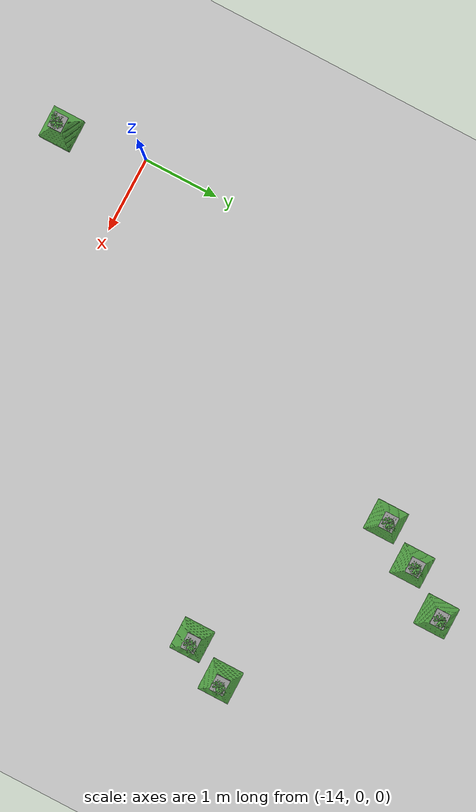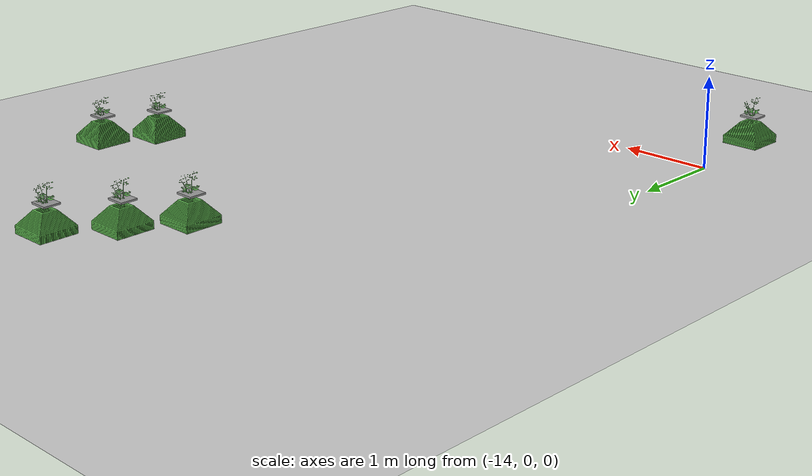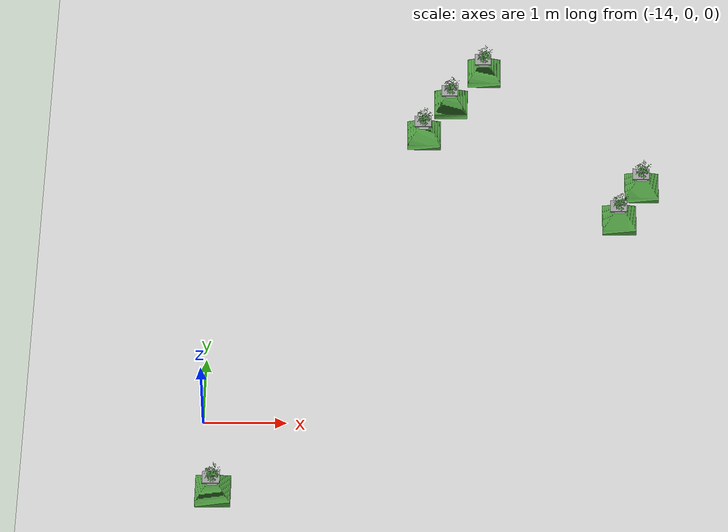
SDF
<sdf version="1.6">
 <world name="default">
  <model name="ground_plane">
   <static>1</static>
   <link name="link">
    <collision name="collision">
     <geometry><plane><normal>0 0 1</normal><size>100 100</size></plane></geometry>
     <surface><friction><ode><mu>100</mu><mu2>50</mu2></ode></friction></surface>
    </collision>
    <visual name="visual">
     <cast_shadows>0</cast_shadows>
     <geometry><plane><normal>0 0 1</normal><size>100 100</size></plane></geometry>
     <material>
      <script><uri>file://media/materials/scripts/gazebo.material</uri><name>Gazebo/Grey</name></script>
     </material>
    </visual>
   </link>
  </model>
  <model name="plant_7">
   <link name="link_0">
    <inertial>
     <mass>1</mass>
     <inertia>
      <ixx>0.0134051</ixx>
      <ixy>0</ixy>
      <ixz>0</ixz>
      <iyy>0.0134051</iyy>
      <iyz>0</iyz>
      <izz>0.0254102</izz>
     </inertia>
    </inertial>
    <gravity>0</gravity>
    <visual name="visual">
     <geometry><mesh><uri>model://square_pot/pot.stl</uri><scale>0.033 0.033 0.02</scale></mesh></geometry>
     <material>
      <lighting>1</lighting>
      <script><uri>file://media/materials/scripts/gazebo.material</uri><name>Gazebo/Grass</name></script>
      <ambient>0.3 0.3 0.3 1</ambient>
      <diffuse>0.7 0.7 0.7 1</diffuse>
      <specular>0.01 0.01 0.01 1</specular>
      <emissive>0 0 0 1</emissive>
      <shader type="vertex"><normal_map>__default__</normal_map></shader>
     </material>
    </visual>
    <collision name="collision">
     <pose>0 0 0.25 0 -0 0</pose>
     <geometry><box><size>0.4 0.4 0.4</size></box></geometry>
     <surface>
      <friction>
       <ode><mu>1</mu><mu2>1</mu2><fdir1>0 0 0</fdir1><slip1>0</slip1><slip2>0</slip2></ode>
       <torsional>
        <coefficient>1</coefficient>
        <patch_radius>0</patch_radius>
        <surface_radius>0</surface_radius>
        <use_patch_radius>1</use_patch_radius>
        <ode><slip>0</slip></ode>
       </torsional>
      </friction>
      <bounce><restitution_coefficient>0</restitution_coefficient><threshold>1e+06</threshold></bounce>
      <contact>
       <collide_without_contact>1</collide_without_contact>
       <collide_without_contact_bitmask>1</collide_without_contact_bitmask>
       <collide_bitmask>1</collide_bitmask>
       <ode>
        <soft_cfm>0</soft_cfm>
        <soft_erp>0.2</soft_erp>
        <kp>1e+13</kp>
        <kd>1</kd>
        <max_vel>0.01</max_vel>
        <min_depth>0</min_depth>
       </ode>
       <bullet>
        <split_impulse>1</split_impulse>
        <split_impulse_penetration_threshold>-0.01</split_impulse_penetration_threshold>
        <soft_cfm>0</soft_cfm>
        <soft_erp>0.2</soft_erp>
        <kp>1e+13</kp>
        <kd>1</kd>
       </bullet>
      </contact>
     </surface>
    </collision>
   </link>
   <link name="link_0_0">
    <pose>-0.011441 -0.008338 0.308474 0 -0 0</pose>
    <inertial>
     <mass>0.000736153</mass>
     <inertia>
      <ixx>2.11165e-06</ixx>
      <ixy>0</ixy>
      <ixz>0</ixz>
      <iyy>2.64382e-06</iyy>
      <iyz>0</iyz>
      <izz>4.70976e-06</izz>
     </inertia>
    </inertial>
    <visual name="visual">
     <geometry><box><size>0.206678 0.18452 0.019291</size></box></geometry>
     <material>
      <lighting>1</lighting>
      <script><uri>file://media/materials/scripts/gazebo.material</uri><name>Gazebo/Grey</name></script>
      <ambient>0.3 0.3 0.3 1</ambient>
      <diffuse>0.7 0.7 0.7 1</diffuse>
      <specular>0.01 0.01 0.01 1</specular>
      <emissive>0 0 0 1</emissive>
     </material>
    </visual>
    <collision name="collision">
     <geometry><box><size>0.206678 0.18452 0.019291</size></box></geometry>
     <surface>
      <friction>
       <ode><mu>1</mu><mu2>1</mu2><fdir1>0 0 0</fdir1><slip1>0</slip1><slip2>0</slip2></ode>
       <torsional>
        <coefficient>1</coefficient>
        <patch_radius>0</patch_radius>
        <surface_radius>0</surface_radius>
        <use_patch_radius>1</use_patch_radius>
        <ode><slip>0</slip></ode>
       </torsional>
      </friction>
      <bounce><restitution_coefficient>0</restitution_coefficient><threshold>1e+06</threshold></bounce>
      <contact>
       <collide_without_contact>0</collide_without_contact>
       <collide_without_contact_bitmask>1</collide_without_contact_bitmask>
       <collide_bitmask>1</collide_bitmask>
       <ode>
        <soft_cfm>0</soft_cfm>
        <soft_erp>0.2</soft_erp>
        <kp>1e+13</kp>
        <kd>1</kd>
        <max_vel>0.01</max_vel>
        <min_depth>0</min_depth>
       </ode>
       <bullet>
        <split_impulse>1</split_impulse>
        <split_impulse_penetration_threshold>-0.01</split_impulse_penetration_threshold>
        <soft_cfm>0</soft_cfm>
        <soft_erp>0.2</soft_erp>
        <kp>1e+13</kp>
        <kd>1</kd>
       </bullet>
      </contact>
     </surface>
    </collision>
   </link>
   <static>1</static>
   <pose>-8.67163 3.86879 0 0 -0 0</pose>
  </model>
  <model name="plant_8">
   <link name="link_0">
    <inertial>
     <mass>1</mass>
     <inertia>
      <ixx>0.0134051</ixx>
      <ixy>0</ixy>
      <ixz>0</ixz>
      <iyy>0.0134051</iyy>
      <iyz>0</iyz>
      <izz>0.0254102</izz>
     </inertia>
    </inertial>
    <gravity>0</gravity>
    <visual name="visual">
     <geometry><mesh><uri>model://square_pot/pot.stl</uri><scale>0.033 0.033 0.02</scale></mesh></geometry>
     <material>
      <lighting>1</lighting>
      <script><uri>file://media/materials/scripts/gazebo.material</uri><name>Gazebo/Grass</name></script>
      <ambient>0.3 0.3 0.3 1</ambient>
      <diffuse>0.7 0.7 0.7 1</diffuse>
      <specular>0.01 0.01 0.01 1</specular>
      <emissive>0 0 0 1</emissive>
      <shader type="vertex"><normal_map>__default__</normal_map></shader>
     </material>
    </visual>
    <collision name="collision">
     <pose>0 0 0.25 0 -0 0</pose>
     <geometry><box><size>0.4 0.4 0.4</size></box></geometry>
     <surface>
      <friction>
       <ode><mu>1</mu><mu2>1</mu2><fdir1>0 0 0</fdir1><slip1>0</slip1><slip2>0</slip2></ode>
       <torsional>
        <coefficient>1</coefficient>
        <patch_radius>0</patch_radius>
        <surface_radius>0</surface_radius>
        <use_patch_radius>1</use_patch_radius>
        <ode><slip>0</slip></ode>
       </torsional>
      </friction>
      <bounce><restitution_coefficient>0</restitution_coefficient><threshold>1e+06</threshold></bounce>
      <contact>
       <collide_without_contact>1</collide_without_contact>
       <collide_without_contact_bitmask>1</collide_without_contact_bitmask>
       <collide_bitmask>1</collide_bitmask>
       <ode>
        <soft_cfm>0</soft_cfm>
        <soft_erp>0.2</soft_erp>
        <kp>1e+13</kp>
        <kd>1</kd>
        <max_vel>0.01</max_vel>
        <min_depth>0</min_depth>
       </ode>
       <bullet>
        <split_impulse>1</split_impulse>
        <split_impulse_penetration_threshold>-0.01</split_impulse_penetration_threshold>
        <soft_cfm>0</soft_cfm>
        <soft_erp>0.2</soft_erp>
        <kp>1e+13</kp>
        <kd>1</kd>
       </bullet>
      </contact>
     </surface>
    </collision>
   </link>
   <link name="link_0_0">
    <pose>-0.011441 -0.008338 0.308474 0 -0 0</pose>
    <inertial>
     <mass>0.000736153</mass>
     <inertia>
      <ixx>2.11165e-06</ixx>
      <ixy>0</ixy>
      <ixz>0</ixz>
      <iyy>2.64382e-06</iyy>
      <iyz>0</iyz>
      <izz>4.70976e-06</izz>
     </inertia>
    </inertial>
    <visual name="visual">
     <geometry><box><size>0.206678 0.18452 0.019291</size></box></geometry>
     <material>
      <lighting>1</lighting>
      <script><uri>file://media/materials/scripts/gazebo.material</uri><name>Gazebo/Grey</name></script>
      <ambient>0.3 0.3 0.3 1</ambient>
      <diffuse>0.7 0.7 0.7 1</diffuse>
      <specular>0.01 0.01 0.01 1</specular>
      <emissive>0 0 0 1</emissive>
     </material>
    </visual>
    <collision name="collision">
     <geometry><box><size>0.206678 0.18452 0.019291</size></box></geometry>
     <surface>
      <friction>
       <ode><mu>1</mu><mu2>1</mu2><fdir1>0 0 0</fdir1><slip1>0</slip1><slip2>0</slip2></ode>
       <torsional>
        <coefficient>1</coefficient>
        <patch_radius>0</patch_radius>
        <surface_radius>0</surface_radius>
        <use_patch_radius>1</use_patch_radius>
        <ode><slip>0</slip></ode>
       </torsional>
      </friction>
      <bounce><restitution_coefficient>0</restitution_coefficient><threshold>1e+06</threshold></bounce>
      <contact>
       <collide_without_contact>0</collide_without_contact>
       <collide_without_contact_bitmask>1</collide_without_contact_bitmask>
       <collide_bitmask>1</collide_bitmask>
       <ode>
        <soft_cfm>0</soft_cfm>
        <soft_erp>0.2</soft_erp>
        <kp>1e+13</kp>
        <kd>1</kd>
        <max_vel>0.01</max_vel>
        <min_depth>0</min_depth>
       </ode>
       <bullet>
        <split_impulse>1</split_impulse>
        <split_impulse_penetration_threshold>-0.01</split_impulse_penetration_threshold>
        <soft_cfm>0</soft_cfm>
        <soft_erp>0.2</soft_erp>
        <kp>1e+13</kp>
        <kd>1</kd>
       </bullet>
      </contact>
     </surface>
    </collision>
   </link>
   <static>1</static>
   <pose>-8.96042 3.31665 0 0 -0 0</pose>
  </model>
  <model name="plant_9">
   <link name="link_0">
    <inertial>
     <mass>1</mass>
     <inertia>
      <ixx>0.0134051</ixx>
      <ixy>0</ixy>
      <ixz>0</ixz>
      <iyy>0.0134051</iyy>
      <iyz>0</iyz>
      <izz>0.0254102</izz>
     </inertia>
    </inertial>
    <gravity>0</gravity>
    <visual name="visual">
     <geometry><mesh><uri>model://square_pot/pot.stl</uri><scale>0.033 0.033 0.02</scale></mesh></geometry>
     <material>
      <lighting>1</lighting>
      <script><uri>file://media/materials/scripts/gazebo.material</uri><name>Gazebo/Grass</name></script>
      <ambient>0.3 0.3 0.3 1</ambient>
      <diffuse>0.7 0.7 0.7 1</diffuse>
      <specular>0.01 0.01 0.01 1</specular>
      <emissive>0 0 0 1</emissive>
      <shader type="vertex"><normal_map>__default__</normal_map></shader>
     </material>
    </visual>
    <collision name="collision">
     <pose>0 0 0.25 0 -0 0</pose>
     <geometry><box><size>0.4 0.4 0.4</size></box></geometry>
     <surface>
      <friction>
       <ode><mu>1</mu><mu2>1</mu2><fdir1>0 0 0</fdir1><slip1>0</slip1><slip2>0</slip2></ode>
       <torsional>
        <coefficient>1</coefficient>
        <patch_radius>0</patch_radius>
        <surface_radius>0</surface_radius>
        <use_patch_radius>1</use_patch_radius>
        <ode><slip>0</slip></ode>
       </torsional>
      </friction>
      <bounce><restitution_coefficient>0</restitution_coefficient><threshold>1e+06</threshold></bounce>
      <contact>
       <collide_without_contact>1</collide_without_contact>
       <collide_without_contact_bitmask>1</collide_without_contact_bitmask>
       <collide_bitmask>1</collide_bitmask>
       <ode>
        <soft_cfm>0</soft_cfm>
        <soft_erp>0.2</soft_erp>
        <kp>1e+13</kp>
        <kd>1</kd>
        <max_vel>0.01</max_vel>
        <min_depth>0</min_depth>
       </ode>
       <bullet>
        <split_impulse>1</split_impulse>
        <split_impulse_penetration_threshold>-0.01</split_impulse_penetration_threshold>
        <soft_cfm>0</soft_cfm>
        <soft_erp>0.2</soft_erp>
        <kp>1e+13</kp>
        <kd>1</kd>
       </bullet>
      </contact>
     </surface>
    </collision>
   </link>
   <link name="link_0_0">
    <pose>-0.011441 -0.008338 0.308474 0 -0 0</pose>
    <inertial>
     <mass>0.000736153</mass>
     <inertia>
      <ixx>2.11165e-06</ixx>
      <ixy>0</ixy>
      <ixz>0</ixz>
      <iyy>2.64382e-06</iyy>
      <iyz>0</iyz>
      <izz>4.70976e-06</izz>
     </inertia>
    </inertial>
    <visual name="visual">
     <geometry><box><size>0.206678 0.18452 0.019291</size></box></geometry>
     <material>
      <lighting>1</lighting>
      <script><uri>file://media/materials/scripts/gazebo.material</uri><name>Gazebo/Grey</name></script>
      <ambient>0.3 0.3 0.3 1</ambient>
      <diffuse>0.7 0.7 0.7 1</diffuse>
      <specular>0.01 0.01 0.01 1</specular>
      <emissive>0 0 0 1</emissive>
     </material>
    </visual>
    <collision name="collision">
     <geometry><box><size>0.206678 0.18452 0.019291</size></box></geometry>
     <surface>
      <friction>
       <ode><mu>1</mu><mu2>1</mu2><fdir1>0 0 0</fdir1><slip1>0</slip1><slip2>0</slip2></ode>
       <torsional>
        <coefficient>1</coefficient>
        <patch_radius>0</patch_radius>
        <surface_radius>0</surface_radius>
        <use_patch_radius>1</use_patch_radius>
        <ode><slip>0</slip></ode>
       </torsional>
      </friction>
      <bounce><restitution_coefficient>0</restitution_coefficient><threshold>1e+06</threshold></bounce>
      <contact>
       <collide_without_contact>0</collide_without_contact>
       <collide_without_contact_bitmask>1</collide_without_contact_bitmask>
       <collide_bitmask>1</collide_bitmask>
       <ode>
        <soft_cfm>0</soft_cfm>
        <soft_erp>0.2</soft_erp>
        <kp>1e+13</kp>
        <kd>1</kd>
        <max_vel>0.01</max_vel>
        <min_depth>0</min_depth>
       </ode>
       <bullet>
        <split_impulse>1</split_impulse>
        <split_impulse_penetration_threshold>-0.01</split_impulse_penetration_threshold>
        <soft_cfm>0</soft_cfm>
        <soft_erp>0.2</soft_erp>
        <kp>1e+13</kp>
        <kd>1</kd>
       </bullet>
      </contact>
     </surface>
    </collision>
   </link>
   <static>1</static>
   <pose>-11.3989 4.76744 0 0 -0 0</pose>
  </model>
  <model name="plant_16">
   <link name="link_0">
    <inertial>
     <mass>1</mass>
     <inertia>
      <ixx>0.0134051</ixx>
      <ixy>0</ixy>
      <ixz>0</ixz>
      <iyy>0.0134051</iyy>
      <iyz>0</iyz>
      <izz>0.0254102</izz>
     </inertia>
    </inertial>
    <gravity>0</gravity>
    <visual name="visual">
     <geometry><mesh><uri>model://square_pot/pot.stl</uri><scale>0.033 0.033 0.02</scale></mesh></geometry>
     <material>
      <lighting>1</lighting>
      <script><uri>file://media/materials/scripts/gazebo.material</uri><name>Gazebo/Grass</name></script>
      <ambient>0.3 0.3 0.3 1</ambient>
      <diffuse>0.7 0.7 0.7 1</diffuse>
      <specular>0.01 0.01 0.01 1</specular>
      <emissive>0 0 0 1</emissive>
      <shader type="vertex"><normal_map>__default__</normal_map></shader>
     </material>
    </visual>
    <collision name="collision">
     <pose>0 0 0.25 0 -0 0</pose>
     <geometry><box><size>0.4 0.4 0.4</size></box></geometry>
     <surface>
      <friction>
       <ode><mu>1</mu><mu2>1</mu2><fdir1>0 0 0</fdir1><slip1>0</slip1><slip2>0</slip2></ode>
       <torsional>
        <coefficient>1</coefficient>
        <patch_radius>0</patch_radius>
        <surface_radius>0</surface_radius>
        <use_patch_radius>1</use_patch_radius>
        <ode><slip>0</slip></ode>
       </torsional>
      </friction>
      <bounce><restitution_coefficient>0</restitution_coefficient><threshold>1e+06</threshold></bounce>
      <contact>
       <collide_without_contact>1</collide_without_contact>
       <collide_without_contact_bitmask>1</collide_without_contact_bitmask>
       <collide_bitmask>1</collide_bitmask>
       <ode>
        <soft_cfm>0</soft_cfm>
        <soft_erp>0.2</soft_erp>
        <kp>1e+13</kp>
        <kd>1</kd>
        <max_vel>0.01</max_vel>
        <min_depth>0</min_depth>
       </ode>
       <bullet>
        <split_impulse>1</split_impulse>
        <split_impulse_penetration_threshold>-0.01</split_impulse_penetration_threshold>
        <soft_cfm>0</soft_cfm>
        <soft_erp>0.2</soft_erp>
        <kp>1e+13</kp>
        <kd>1</kd>
       </bullet>
      </contact>
     </surface>
    </collision>
   </link>
   <link name="link_0_0">
    <pose>-0.011441 -0.008338 0.308474 0 -0 0</pose>
    <inertial>
     <mass>0.000736153</mass>
     <inertia>
      <ixx>2.11165e-06</ixx>
      <ixy>0</ixy>
      <ixz>0</ixz>
      <iyy>2.64382e-06</iyy>
      <iyz>0</iyz>
      <izz>4.70976e-06</izz>
     </inertia>
    </inertial>
    <visual name="visual">
     <geometry><box><size>0.206678 0.18452 0.019291</size></box></geometry>
     <material>
      <lighting>1</lighting>
      <script><uri>file://media/materials/scripts/gazebo.material</uri><name>Gazebo/Grey</name></script>
      <ambient>0.3 0.3 0.3 1</ambient>
      <diffuse>0.7 0.7 0.7 1</diffuse>
      <specular>0.01 0.01 0.01 1</specular>
      <emissive>0 0 0 1</emissive>
     </material>
    </visual>
    <collision name="collision">
     <geometry><box><size>0.206678 0.18452 0.019291</size></box></geometry>
     <surface>
      <friction>
       <ode><mu>1</mu><mu2>1</mu2><fdir1>0 0 0</fdir1><slip1>0</slip1><slip2>0</slip2></ode>
       <torsional>
        <coefficient>1</coefficient>
        <patch_radius>0</patch_radius>
        <surface_radius>0</surface_radius>
        <use_patch_radius>1</use_patch_radius>
        <ode><slip>0</slip></ode>
       </torsional>
      </friction>
      <bounce><restitution_coefficient>0</restitution_coefficient><threshold>1e+06</threshold></bounce>
      <contact>
       <collide_without_contact>0</collide_without_contact>
       <collide_without_contact_bitmask>1</collide_without_contact_bitmask>
       <collide_bitmask>1</collide_bitmask>
       <ode>
        <soft_cfm>0</soft_cfm>
        <soft_erp>0.2</soft_erp>
        <kp>1e+13</kp>
        <kd>1</kd>
        <max_vel>0.01</max_vel>
        <min_depth>0</min_depth>
       </ode>
       <bullet>
        <split_impulse>1</split_impulse>
        <split_impulse_penetration_threshold>-0.01</split_impulse_penetration_threshold>
        <soft_cfm>0</soft_cfm>
        <soft_erp>0.2</soft_erp>
        <kp>1e+13</kp>
        <kd>1</kd>
       </bullet>
      </contact>
     </surface>
    </collision>
   </link>
   <static>1</static>
   <pose>-11.0624 5.31415 0 0 -0 0</pose>
  </model>
  <model name="plant_17">
   <link name="link_0">
    <inertial>
     <mass>1</mass>
     <inertia>
      <ixx>0.0134051</ixx>
      <ixy>0</ixy>
      <ixz>0</ixz>
      <iyy>0.0134051</iyy>
      <iyz>0</iyz>
      <izz>0.0254102</izz>
     </inertia>
    </inertial>
    <gravity>0</gravity>
    <visual name="visual">
     <geometry><mesh><uri>model://square_pot/pot.stl</uri><scale>0.033 0.033 0.02</scale></mesh></geometry>
     <material>
      <lighting>1</lighting>
      <script><uri>file://media/materials/scripts/gazebo.material</uri><name>Gazebo/Grass</name></script>
      <ambient>0.3 0.3 0.3 1</ambient>
      <diffuse>0.7 0.7 0.7 1</diffuse>
      <specular>0.01 0.01 0.01 1</specular>
      <emissive>0 0 0 1</emissive>
      <shader type="vertex"><normal_map>__default__</normal_map></shader>
     </material>
    </visual>
    <collision name="collision">
     <pose>0 0 0.25 0 -0 0</pose>
     <geometry><box><size>0.4 0.4 0.4</size></box></geometry>
     <surface>
      <friction>
       <ode><mu>1</mu><mu2>1</mu2><fdir1>0 0 0</fdir1><slip1>0</slip1><slip2>0</slip2></ode>
       <torsional>
        <coefficient>1</coefficient>
        <patch_radius>0</patch_radius>
        <surface_radius>0</surface_radius>
        <use_patch_radius>1</use_patch_radius>
        <ode><slip>0</slip></ode>
       </torsional>
      </friction>
      <bounce><restitution_coefficient>0</restitution_coefficient><threshold>1e+06</threshold></bounce>
      <contact>
       <collide_without_contact>1</collide_without_contact>
       <collide_without_contact_bitmask>1</collide_without_contact_bitmask>
       <collide_bitmask>1</collide_bitmask>
       <ode>
        <soft_cfm>0</soft_cfm>
        <soft_erp>0.2</soft_erp>
        <kp>1e+13</kp>
        <kd>1</kd>
        <max_vel>0.01</max_vel>
        <min_depth>0</min_depth>
       </ode>
       <bullet>
        <split_impulse>1</split_impulse>
        <split_impulse_penetration_threshold>-0.01</split_impulse_penetration_threshold>
        <soft_cfm>0</soft_cfm>
        <soft_erp>0.2</soft_erp>
        <kp>1e+13</kp>
        <kd>1</kd>
       </bullet>
      </contact>
     </surface>
    </collision>
   </link>
   <link name="link_0_0">
    <pose>-0.011441 -0.008338 0.308474 0 -0 0</pose>
    <inertial>
     <mass>0.000736153</mass>
     <inertia>
      <ixx>2.11165e-06</ixx>
      <ixy>0</ixy>
      <ixz>0</ixz>
      <iyy>2.64382e-06</iyy>
      <iyz>0</iyz>
      <izz>4.70976e-06</izz>
     </inertia>
    </inertial>
    <visual name="visual">
     <geometry><box><size>0.206678 0.18452 0.019291</size></box></geometry>
     <material>
      <lighting>1</lighting>
      <script><uri>file://media/materials/scripts/gazebo.material</uri><name>Gazebo/Grey</name></script>
      <ambient>0.3 0.3 0.3 1</ambient>
      <diffuse>0.7 0.7 0.7 1</diffuse>
      <specular>0.01 0.01 0.01 1</specular>
      <emissive>0 0 0 1</emissive>
     </material>
    </visual>
    <collision name="collision">
     <geometry><box><size>0.206678 0.18452 0.019291</size></box></geometry>
     <surface>
      <friction>
       <ode><mu>1</mu><mu2>1</mu2><fdir1>0 0 0</fdir1><slip1>0</slip1><slip2>0</slip2></ode>
       <torsional>
        <coefficient>1</coefficient>
        <patch_radius>0</patch_radius>
        <surface_radius>0</surface_radius>
        <use_patch_radius>1</use_patch_radius>
        <ode><slip>0</slip></ode>
       </torsional>
      </friction>
      <bounce><restitution_coefficient>0</restitution_coefficient><threshold>1e+06</threshold></bounce>
      <contact>
       <collide_without_contact>0</collide_without_contact>
       <collide_without_contact_bitmask>1</collide_without_contact_bitmask>
       <collide_bitmask>1</collide_bitmask>
       <ode>
        <soft_cfm>0</soft_cfm>
        <soft_erp>0.2</soft_erp>
        <kp>1e+13</kp>
        <kd>1</kd>
        <max_vel>0.01</max_vel>
        <min_depth>0</min_depth>
       </ode>
       <bullet>
        <split_impulse>1</split_impulse>
        <split_impulse_penetration_threshold>-0.01</split_impulse_penetration_threshold>
        <soft_cfm>0</soft_cfm>
        <soft_erp>0.2</soft_erp>
        <kp>1e+13</kp>
        <kd>1</kd>
       </bullet>
      </contact>
     </surface>
    </collision>
   </link>
   <static>1</static>
   <pose>-10.6426 5.87795 0 0 -0 0</pose>
  </model>
  <model name="plant_95">
   <link name="link_0">
    <inertial>
     <mass>1</mass>
     <inertia>
      <ixx>0.0134051</ixx>
      <ixy>0</ixy>
      <ixz>0</ixz>
      <iyy>0.0134051</iyy>
      <iyz>0</iyz>
      <izz>0.0254102</izz>
     </inertia>
    </inertial>
    <gravity>0</gravity>
    <visual name="visual">
     <geometry><mesh><uri>model://square_pot/pot.stl</uri><scale>0.033 0.033 0.02</scale></mesh></geometry>
     <material>
      <lighting>1</lighting>
      <script><uri>file://media/materials/scripts/gazebo.material</uri><name>Gazebo/Grass</name></script>
      <ambient>0.3 0.3 0.3 1</ambient>
      <diffuse>0.7 0.7 0.7 1</diffuse>
      <specular>0.01 0.01 0.01 1</specular>
      <emissive>0 0 0 1</emissive>
      <shader type="vertex"><normal_map>__default__</normal_map></shader>
     </material>
    </visual>
    <collision name="collision">
     <pose>0 0 0.25 0 -0 0</pose>
     <geometry><box><size>0.4 0.4 0.4</size></box></geometry>
     <surface>
      <friction>
       <ode><mu>1</mu><mu2>1</mu2><fdir1>0 0 0</fdir1><slip1>0</slip1><slip2>0</slip2></ode>
       <torsional>
        <coefficient>1</coefficient>
        <patch_radius>0</patch_radius>
        <surface_radius>0</surface_radius>
        <use_patch_radius>1</use_patch_radius>
        <ode><slip>0</slip></ode>
       </torsional>
      </friction>
      <bounce><restitution_coefficient>0</restitution_coefficient><threshold>1e+06</threshold></bounce>
      <contact>
       <collide_without_contact>1</collide_without_contact>
       <collide_without_contact_bitmask>1</collide_without_contact_bitmask>
       <collide_bitmask>1</collide_bitmask>
       <ode>
        <soft_cfm>0</soft_cfm>
        <soft_erp>0.2</soft_erp>
        <kp>1e+13</kp>
        <kd>1</kd>
        <max_vel>0.01</max_vel>
        <min_depth>0</min_depth>
       </ode>
       <bullet>
        <split_impulse>1</split_impulse>
        <split_impulse_penetration_threshold>-0.01</split_impulse_penetration_threshold>
        <soft_cfm>0</soft_cfm>
        <soft_erp>0.2</soft_erp>
        <kp>1e+13</kp>
        <kd>1</kd>
       </bullet>
      </contact>
     </surface>
    </collision>
   </link>
   <link name="link_0_0">
    <pose>-0.011441 -0.008338 0.308474 0 -0 0</pose>
    <inertial>
     <mass>0.000736153</mass>
     <inertia>
      <ixx>2.11165e-06</ixx>
      <ixy>0</ixy>
      <ixz>0</ixz>
      <iyy>2.64382e-06</iyy>
      <iyz>0</iyz>
      <izz>4.70976e-06</izz>
     </inertia>
    </inertial>
    <visual name="visual">
     <geometry><box><size>0.206678 0.18452 0.019291</size></box></geometry>
     <material>
      <lighting>1</lighting>
      <script><uri>file://media/materials/scripts/gazebo.material</uri><name>Gazebo/Grey</name></script>
      <ambient>0.3 0.3 0.3 1</ambient>
      <diffuse>0.7 0.7 0.7 1</diffuse>
      <specular>0.01 0.01 0.01 1</specular>
      <emissive>0 0 0 1</emissive>
     </material>
    </visual>
    <collision name="collision">
     <geometry><box><size>0.206678 0.18452 0.019291</size></box></geometry>
     <surface>
      <friction>
       <ode><mu>1</mu><mu2>1</mu2><fdir1>0 0 0</fdir1><slip1>0</slip1><slip2>0</slip2></ode>
       <torsional>
        <coefficient>1</coefficient>
        <patch_radius>0</patch_radius>
        <surface_radius>0</surface_radius>
        <use_patch_radius>1</use_patch_radius>
        <ode><slip>0</slip></ode>
       </torsional>
      </friction>
      <bounce><restitution_coefficient>0</restitution_coefficient><threshold>1e+06</threshold></bounce>
      <contact>
       <collide_without_contact>0</collide_without_contact>
       <collide_without_contact_bitmask>1</collide_without_contact_bitmask>
       <collide_bitmask>1</collide_bitmask>
       <ode>
        <soft_cfm>0</soft_cfm>
        <soft_erp>0.2</soft_erp>
        <kp>1e+13</kp>
        <kd>1</kd>
        <max_vel>0.01</max_vel>
        <min_depth>0</min_depth>
       </ode>
       <bullet>
        <split_impulse>1</split_impulse>
        <split_impulse_penetration_threshold>-0.01</split_impulse_penetration_threshold>
        <soft_cfm>0</soft_cfm>
        <soft_erp>0.2</soft_erp>
        <kp>1e+13</kp>
        <kd>1</kd>
       </bullet>
      </contact>
     </surface>
    </collision>
   </link>
   <static>1</static>
   <pose>-13.8472 -1.10091 0 0 -0 0</pose>
  </model>
 </world>
</sdf>
